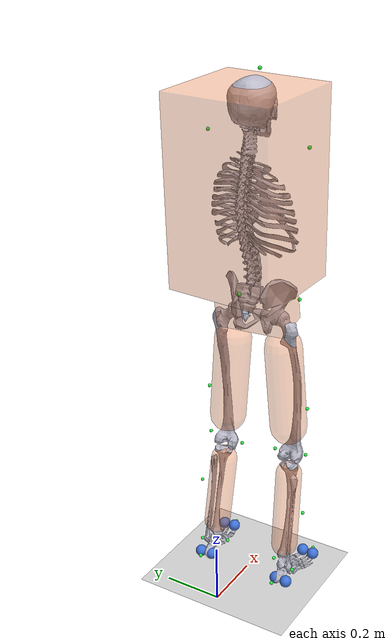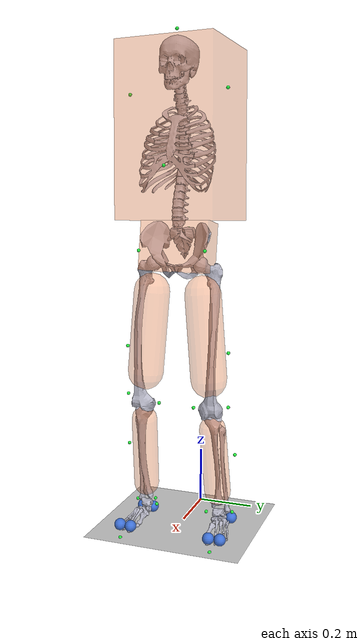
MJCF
<mujoco model="S001_calibrated">
  <compiler angle="radian" autolimits="true" />
  <option gravity="0 0 -9.80665" timestep="0.001" />
  <default>
    <default class="visual">
      <geom contype="0" conaffinity="0" group="2" rgba="0.72 0.72 0.78 1" />
    </default>
    <default class="collision">
      <geom friction="0.8 0.005 0.0001" solref="-100000 -1000" rgba="0.25 0.45 0.85 1" />
    </default>
    <default class="self_collision">
      <geom friction="0.8 0.005 0.0001" solref="-25000 -250" rgba="0.95 0.45 0.18 0.35" />
    </default>
  </default>
  <asset>
    <mesh name="visual_00_pelvis_sacrum_ec82986d" file="Geometry/visual_00_pelvis_sacrum_ec82986d.obj" />
    <mesh name="visual_01_pelvis_pelvis_302c8103" file="Geometry/visual_01_pelvis_pelvis_302c8103.obj" />
    <mesh name="visual_02_pelvis_l_pelvis_221ff377" file="Geometry/visual_02_pelvis_l_pelvis_221ff377.obj" />
    <mesh name="visual_03_femur_right_femur_r_2bf9d3ed" file="Geometry/visual_03_femur_right_femur_r_2bf9d3ed.obj" />
    <mesh name="visual_04_tibia_right_r_tibia_2958b9c9" file="Geometry/visual_04_tibia_right_r_tibia_2958b9c9.obj" />
    <mesh name="visual_05_tibia_right_fibula_640f87b7" file="Geometry/visual_05_tibia_right_fibula_640f87b7.obj" />
    <mesh name="visual_06_foot_right_talus_9a24dff8" file="Geometry/visual_06_foot_right_talus_9a24dff8.obj" />
    <mesh name="visual_07_foot_right_foot_7a876838" file="Geometry/visual_07_foot_right_foot_7a876838.obj" />
    <mesh name="visual_08_foot_right_bofoot_9f7184c1" file="Geometry/visual_08_foot_right_bofoot_9f7184c1.obj" />
    <mesh name="visual_09_femur_left_l_femur_3a5df196" file="Geometry/visual_09_femur_left_l_femur_3a5df196.obj" />
    <mesh name="visual_10_tibia_left_l_tibia_5528711a" file="Geometry/visual_10_tibia_left_l_tibia_5528711a.obj" />
    <mesh name="visual_11_tibia_left_l_fibula_21cdc2c3" file="Geometry/visual_11_tibia_left_l_fibula_21cdc2c3.obj" />
    <mesh name="visual_12_foot_left_l_talus_fd829c17" file="Geometry/visual_12_foot_left_l_talus_fd829c17.obj" />
    <mesh name="visual_13_foot_left_l_foot_3fe52ebe" file="Geometry/visual_13_foot_left_l_foot_3fe52ebe.obj" />
    <mesh name="visual_14_foot_left_l_bofoot_73bbc705" file="Geometry/visual_14_foot_left_l_bofoot_73bbc705.obj" />
    <mesh name="visual_15_torso_hat_spine_e5497b48" file="Geometry/visual_15_torso_hat_spine_e5497b48.obj" />
    <mesh name="visual_16_torso_hat_jaw_ccce7bf1" file="Geometry/visual_16_torso_hat_jaw_ccce7bf1.obj" />
    <mesh name="visual_17_torso_hat_skull_4c29f62d" file="Geometry/visual_17_torso_hat_skull_4c29f62d.obj" />
    <mesh name="visual_18_torso_hat_ribs_c455e842" file="Geometry/visual_18_torso_hat_ribs_c455e842.obj" />
  </asset>
  <worldbody>
    <geom class="collision" name="ground" type="plane" size="5 5 0.1" rgba="0.85 0.85 0.85 1" />
    <geom class="visual" name="visual_ground" type="plane" size="5 5 0.1" pos="0 0 -0.002" rgba="0.78 0.78 0.78 1" />
    <body name="pelvis" pos="0.343699383 0.0125606136 1.0052769" quat="0.986495801 -0.0128055559 0.160923111 0.02767318">
      <freejoint name="pelvis_free" />
      <inertial mass="12.8372117" pos="-0.0722635766 1.994932e-17 -0.0166107335" fullinertia="0.090098155 0.0524652246 0.0819766857 -1.38051736e-17 0.00584011942 1.21992179e-17" />
      <geom class="self_collision" name="collision_pelvis" type="box" pos="-0.0722635766 2.22621473e-17 -0.0166107335" quat="-0.366330887 0.604815411 0.604815411 -0.366330887" size="0.118220646 0.0882765688 0.0668441471" />
      <body name="torso" pos="-0.197093879 0.00247066871 4.11442885e-18" quat="0.980888698 0.0251863802 -0.186067148 -0.0510100472">
        <inertial mass="37.3187129" pos="0.0355025572 -0.0100664123 0.330289938" fullinertia="1.53365428 1.49076906 0.751756748 0 0 0" />
        <geom class="self_collision" name="collision_torso" type="box" pos="0.0355025572 -0.0100664123 0.330289938" quat="-4.37789511e-17 0.707106781 -1.09897805e-17 -0.707106781" size="0.302238765 0.178717899 0.168797523" />
        <site name="marker_Sternum" type="sphere" size="0.006" pos="0.23981105 0.0121477459 0.204221968" rgba="0.15 0.95 0.25 1" />
        <site name="marker_R.Acromium" type="sphere" size="0.006" pos="0.124045882 -0.167664419 0.458616209" rgba="0.15 0.95 0.25 1" />
        <site name="marker_L.Acromium" type="sphere" size="0.006" pos="0.124045882 0.190656196 0.459601783" rgba="0.15 0.95 0.25 1" />
        <site name="marker_Top.Head" type="sphere" size="0.006" pos="0.159197542 0.0239879485 0.655787567" rgba="0.15 0.95 0.25 1" />
        <geom class="visual" name="visual_15_torso_hat_spine_e5497b48" type="mesh" mesh="visual_15_torso_hat_spine_e5497b48" pos="0 0 0" />
        <geom class="visual" name="visual_16_torso_hat_jaw_ccce7bf1" type="mesh" mesh="visual_16_torso_hat_jaw_ccce7bf1" pos="0 0 0" />
        <geom class="visual" name="visual_17_torso_hat_skull_4c29f62d" type="mesh" mesh="visual_17_torso_hat_skull_4c29f62d" pos="0 0 0" />
        <geom class="visual" name="visual_18_torso_hat_ribs_c455e842" type="mesh" mesh="visual_18_torso_hat_ribs_c455e842" pos="0 0 0" />
      <joint name="torso_flexion" type="hinge" pos="0 0 0" axis="0 1 0" limited="true" range="-0.698131701 0.698131701" damping="0.5" armature="0.01" /><joint name="torso_lateral" type="hinge" pos="0 0 0" axis="1 0 0" limited="true" range="-0.523598776 0.523598776" damping="0.5" armature="0.01" /><joint name="torso_rotation" type="hinge" pos="0 0 0" axis="0 0 1" limited="true" range="-0.523598776 0.523598776" damping="0.5" armature="0.01" /></body>
      <body name="femur_left" pos="-0.0443475011 0.0840268443 -0.0700223702" quat="0.984725493 0.0492398603 -0.166681023 -0.0104200333">
        <inertial mass="10.1387485" pos="0 0 -0.212946957" fullinertia="0.224806073 0.235081356 0.049406616 0 0 0" />
        <joint name="hip_flexion_left" type="hinge" pos="0 0 0" axis="0 -1 0" limited="true" range="-0.523598776 2.0943951" damping="0.5" armature="0.01" />
        <joint name="hip_adduction_left" type="hinge" pos="0 0 0" axis="1 0 0" limited="true" range="-0.436332313 0.785398163" damping="0.5" armature="0.01" />
        <joint name="hip_rotation_left" type="hinge" pos="0 0 0" axis="0 0 -1" limited="true" range="-0.785398163 0.785398163" damping="0.3" armature="0.01" />
        <geom class="self_collision" name="collision_femur_left" type="capsule" size="0.063110668" fromto="0 0 -0.098110668 0 0 -0.397737468" />
        <body name="tibia_left" pos="-9.02685355e-19 3.10967098e-18 -0.495848136" quat="0.985048348 -0.00888040178 0.0865890532 0.148671536">
          <inertial mass="4.04126368" pos="0 0 -0.177020448" fullinertia="0.0493428936 0.0500142711 0.00489210211 0 0 0" />
          <joint name="knee_left" type="hinge" pos="0 0 0" axis="0 1 0" limited="true" range="-0.5 2.61799388" damping="0.3" armature="0.01" />
          <geom class="self_collision" name="collision_tibia_left" type="capsule" size="0.046558136" fromto="0 0 -0.081558136 0 0 -0.32614842" />
          <body name="foot_left" pos="-3.41569468e-18 -2.01292435e-18 -0.407706556" quat="0.989635607 -0.031150748 -0.0746482118 -0.118653445">
            <inertial mass="1.70763146" pos="0.046439363 0.00587096121 -0.020295508" fullinertia="0.00264064573 0.00716329796 0.00681252163 0.000249589237 0.000555215648 -5.06296655e-05" />
            <joint name="ankle_left" type="hinge" pos="0 0 0" axis="0 -1 0" limited="true" range="-0.872664626 0.523598776" damping="0.2" armature="0.005" />
            <geom class="collision" name="contact_left_0" type="sphere" size="0.0204739234" pos="-0.0395747246 -0.0051506885 -0.0344706619" />
            <geom class="visual" name="visual_foot_left_0" type="sphere" size="0.0204739234" pos="-0.0395747246 -0.0051506885 -0.0344706619" rgba="0.18 0.32 0.58 0.35" />
            <geom class="collision" name="contact_left_1" type="sphere" size="0.0204739234" pos="-0.0395747246 0.0357971583 -0.0344706619" />
            <geom class="visual" name="visual_foot_left_1" type="sphere" size="0.0204739234" pos="-0.0395747246 0.0357971583 -0.0344706619" rgba="0.18 0.32 0.58 0.35" />
            <geom class="collision" name="contact_left_2" type="sphere" size="0.0204739234" pos="0.149550193 -0.0051506885 -0.0344706619" />
            <geom class="visual" name="visual_foot_left_2" type="sphere" size="0.0204739234" pos="0.149550193 -0.0051506885 -0.0344706619" rgba="0.18 0.32 0.58 0.35" />
            <geom class="collision" name="contact_left_3" type="sphere" size="0.0204739234" pos="0.149550193 0.0357971583 -0.0344706619" />
            <geom class="visual" name="visual_foot_left_3" type="sphere" size="0.0204739234" pos="0.149550193 0.0357971583 -0.0344706619" rgba="0.18 0.32 0.58 0.35" />
            <site name="marker_L.Heel" type="sphere" size="0.006" pos="-0.0888622246 0.0128117283 -0.0161759535" rgba="0.15 0.95 0.25 1" />
            <site name="marker_L.Toe.Lat" type="sphere" size="0.006" pos="0.106791232 0.0923151935 -0.0735885628" rgba="0.15 0.95 0.25 1" />
            <site name="marker_L.Toe.Med" type="sphere" size="0.006" pos="0.14544382 -0.0179365623 -0.0646505904" rgba="0.15 0.95 0.25 1" />
            <site name="marker_L.Toe.Tip" type="sphere" size="0.006" pos="0.204827808 0.0128117283 -0.0558617234" rgba="0.15 0.95 0.25 1" />
            <geom class="visual" name="visual_12_foot_left_l_talus_fd829c17" type="mesh" mesh="visual_12_foot_left_l_talus_fd829c17" pos="0 0 0" />
            <geom class="visual" name="visual_13_foot_left_l_foot_3fe52ebe" type="mesh" mesh="visual_13_foot_left_l_foot_3fe52ebe" pos="0 0 0" />
            <geom class="visual" name="visual_14_foot_left_l_bofoot_73bbc705" type="mesh" mesh="visual_14_foot_left_l_bofoot_73bbc705" pos="0 0 0" />
          </body>
          <site name="marker_L.Shank.Centroid" type="sphere" size="0.006" pos="0.00643007566 0.0711503402 -0.183133826" rgba="0.15 0.95 0.25 1" />
          <site name="marker_L.Ankle.Lat" type="sphere" size="0.006" pos="-2.07906759e-17 0.0463433494 -0.412173546" rgba="0.15 0.95 0.25 1" />
          <site name="marker_L.Ankle.Med" type="sphere" size="0.006" pos="-2.15876549e-17 -0.0463433494 -0.403239566" rgba="0.15 0.95 0.25 1" />
          <geom class="visual" name="visual_10_tibia_left_l_tibia_5528711a" type="mesh" mesh="visual_10_tibia_left_l_tibia_5528711a" pos="0 0 0" />
          <geom class="visual" name="visual_11_tibia_left_l_fibula_21cdc2c3" type="mesh" mesh="visual_11_tibia_left_l_fibula_21cdc2c3" pos="0 0 0" />
        </body>
        <site name="marker_L.Thigh.Centroid" type="sphere" size="0.006" pos="-0.0106802219 0.0734399909 -0.307012115" rgba="0.15 0.95 0.25 1" />
        <site name="marker_L.Knee.Lat" type="sphere" size="0.006" pos="-3.37328108e-19 0.0630915246 -0.494293805" rgba="0.15 0.95 0.25 1" />
        <site name="marker_L.Knee.Med" type="sphere" size="0.006" pos="-8.80600288e-19 -0.0630915246 -0.497402466" rgba="0.15 0.95 0.25 1" />
        <geom class="visual" name="visual_09_femur_left_l_femur_3a5df196" type="mesh" mesh="visual_09_femur_left_l_femur_3a5df196" pos="0 0 0" />
      </body>
      <body name="femur_right" pos="-0.0443475011 -0.0840268443 -0.0700223702" quat="0.982577645 -0.0216039858 -0.163388742 -0.0858985374">
        <inertial mass="10.1387485" pos="0 0 -0.208760636" fullinertia="0.216815757 0.22709104 0.049406616 0 0 0" />
        <joint name="hip_flexion_right" type="hinge" pos="0 0 0" axis="0 -1 0" limited="true" range="-0.523598776 2.0943951" damping="0.5" armature="0.01" />
        <joint name="hip_adduction_right" type="hinge" pos="0 0 0" axis="-1 0 0" limited="true" range="-0.436332313 0.785398163" damping="0.5" armature="0.01" />
        <joint name="hip_rotation_right" type="hinge" pos="0 0 0" axis="0 0 1" limited="true" range="-0.785398163 0.785398163" damping="0.3" armature="0.01" />
        <geom class="self_collision" name="collision_femur_right" type="capsule" size="0.0629596304" fromto="0 0 -0.0979596304 0 0 -0.388140633" />
        <body name="tibia_right" pos="2.25330024e-19 -8.09517236e-20 -0.486100264" quat="0.991972618 0.00220753525 0.0913230117 -0.0874388916">
          <inertial mass="4.04126368" pos="0 0 -0.183256219" fullinertia="0.0527291561 0.0534005336 0.00489210211 0 0 0" />
          <joint name="knee_right" type="hinge" pos="0 0 0" axis="0 1 0" limited="true" range="-0.5 2.61799388" damping="0.3" armature="0.01" />
          <geom class="self_collision" name="collision_tibia_right" type="capsule" size="0.0451264789" fromto="0 0 -0.0801264789 0 0 -0.34194206" />
          <body name="foot_right" pos="1.14213488e-17 -7.53787454e-18 -0.422068539" quat="0.988876066 0.0374921398 -0.0816058887 0.118570417">
            <inertial mass="1.70763146" pos="0.046439692 -0.0058612445 -0.0202978797" fullinertia="0.00264075108 0.00716320678 0.00681251045 -0.000250342946 0.000555281756 5.07815352e-05" />
            <joint name="ankle_right" type="hinge" pos="0 0 0" axis="0 -1 0" limited="true" range="-0.872664626 0.523598776" damping="0.2" armature="0.005" />
            <geom class="collision" name="contact_right_0" type="sphere" size="0.0204692973" pos="-0.0395799837 -0.0357770438 -0.0343965572" />
            <geom class="visual" name="visual_foot_right_0" type="sphere" size="0.0204692973" pos="-0.0395799837 -0.0357770438 -0.0343965572" rgba="0.18 0.32 0.58 0.35" />
            <geom class="collision" name="contact_right_1" type="sphere" size="0.0204692973" pos="-0.0395799837 0.00516155073 -0.0343965572" />
            <geom class="visual" name="visual_foot_right_1" type="sphere" size="0.0204692973" pos="-0.0395799837 0.00516155073 -0.0343965572" rgba="0.18 0.32 0.58 0.35" />
            <geom class="collision" name="contact_right_2" type="sphere" size="0.0204692973" pos="0.149552882 -0.0357770438 -0.0343965572" />
            <geom class="visual" name="visual_foot_right_2" type="sphere" size="0.0204692973" pos="0.149552882 -0.0357770438 -0.0343965572" rgba="0.18 0.32 0.58 0.35" />
            <geom class="collision" name="contact_right_3" type="sphere" size="0.0204692973" pos="0.149552882 0.00516155073 -0.0343965572" />
            <geom class="visual" name="visual_foot_right_3" type="sphere" size="0.0204692973" pos="0.149552882 0.00516155073 -0.0343965572" rgba="0.18 0.32 0.58 0.35" />
            <site name="marker_R.Heel" type="sphere" size="0.006" pos="-0.0867979322 -0.00718984372 -0.0223530831" rgba="0.15 0.95 0.25 1" />
            <site name="marker_R.Toe.Lat" type="sphere" size="0.006" pos="0.105899742 -0.09505044 -0.0746842013" rgba="0.15 0.95 0.25 1" />
            <site name="marker_R.Toe.Med" type="sphere" size="0.006" pos="0.148534182 0.0145901355 -0.0627078825" rgba="0.15 0.95 0.25 1" />
            <site name="marker_R.Toe.Tip" type="sphere" size="0.006" pos="0.204399139 -0.00718984372 -0.0553617255" rgba="0.15 0.95 0.25 1" />
            <geom class="visual" name="visual_06_foot_right_talus_9a24dff8" type="mesh" mesh="visual_06_foot_right_talus_9a24dff8" pos="0 0 0" />
            <geom class="visual" name="visual_07_foot_right_foot_7a876838" type="mesh" mesh="visual_07_foot_right_foot_7a876838" pos="0 0 0" />
            <geom class="visual" name="visual_08_foot_right_bofoot_9f7184c1" type="mesh" mesh="visual_08_foot_right_bofoot_9f7184c1" pos="0 0 0" />
          </body>
          <site name="marker_R.Shank.Centroid" type="sphere" size="0.006" pos="0.00253032701 -0.0736462239 -0.199955898" rgba="0.15 0.95 0.25 1" />
          <site name="marker_R.Ankle.Lat" type="sphere" size="0.006" pos="2.23811477e-17 -0.0449364802 -0.426205186" rgba="0.15 0.95 0.25 1" />
          <site name="marker_R.Ankle.Med" type="sphere" size="0.006" pos="2.28050827e-17 0.0449364802 -0.417931892" rgba="0.15 0.95 0.25 1" />
          <geom class="visual" name="visual_04_tibia_right_r_tibia_2958b9c9" type="mesh" mesh="visual_04_tibia_right_r_tibia_2958b9c9" pos="0 0 0" />
          <geom class="visual" name="visual_05_tibia_right_fibula_640f87b7" type="mesh" mesh="visual_05_tibia_right_fibula_640f87b7" pos="0 0 0" />
        </body>
        <site name="marker_R.Thigh.Centroid" type="sphere" size="0.006" pos="0.00520058328 -0.0767581758 -0.307179256" rgba="0.15 0.95 0.25 1" />
        <site name="marker_R.Knee.Lat" type="sphere" size="0.006" pos="-2.8380528e-17 -0.0627716705 -0.481238943" rgba="0.15 0.95 0.25 1" />
        <site name="marker_R.Knee.Med" type="sphere" size="0.006" pos="-2.82331717e-17 0.0627716705 -0.490961585" rgba="0.15 0.95 0.25 1" />
        <geom class="visual" name="visual_03_femur_right_femur_r_2bf9d3ed" type="mesh" mesh="visual_03_femur_right_femur_r_2bf9d3ed" pos="0 0 0" />
      </body>
      <site name="marker_R.ASIS" type="sphere" size="0.006" pos="0.00495314698 -0.116615893 -0.00441016997" rgba="0.15 0.95 0.25 1" />
      <site name="marker_L.ASIS" type="sphere" size="0.006" pos="0.00704685302 0.116615893 0.00441016997" rgba="0.15 0.95 0.25 1" />
      <site name="marker_V.Sacral" type="sphere" size="0.006" pos="-0.197093879 0.00247066871 4.11442885e-18" rgba="0.15 0.95 0.25 1" />
      <geom class="visual" name="visual_00_pelvis_sacrum_ec82986d" type="mesh" mesh="visual_00_pelvis_sacrum_ec82986d" pos="0 0 0" />
      <geom class="visual" name="visual_01_pelvis_pelvis_302c8103" type="mesh" mesh="visual_01_pelvis_pelvis_302c8103" pos="0 0 0" />
      <geom class="visual" name="visual_02_pelvis_l_pelvis_221ff377" type="mesh" mesh="visual_02_pelvis_l_pelvis_221ff377" pos="0 0 0" />
    </body>
  </worldbody>
  <actuator>
    <position name="hip_flexion_left_position" joint="hip_flexion_left" kp="100" ctrllimited="true" ctrlrange="-0.523598776 2.0943951" />
    <velocity name="hip_flexion_left_velocity" joint="hip_flexion_left" kv="20" ctrllimited="true" ctrlrange="-20 20" />
    <position name="hip_adduction_left_position" joint="hip_adduction_left" kp="100" ctrllimited="true" ctrlrange="-0.436332313 0.785398163" />
    <velocity name="hip_adduction_left_velocity" joint="hip_adduction_left" kv="20" ctrllimited="true" ctrlrange="-20 20" />
    <position name="hip_rotation_left_position" joint="hip_rotation_left" kp="100" ctrllimited="true" ctrlrange="-0.785398163 0.785398163" />
    <velocity name="hip_rotation_left_velocity" joint="hip_rotation_left" kv="20" ctrllimited="true" ctrlrange="-20 20" />
    <position name="knee_left_position" joint="knee_left" kp="100" ctrllimited="true" ctrlrange="0 2.61799388" />
    <velocity name="knee_left_velocity" joint="knee_left" kv="20" ctrllimited="true" ctrlrange="-20 20" />
    <position name="ankle_left_position" joint="ankle_left" kp="100" ctrllimited="true" ctrlrange="-0.872664626 0.523598776" />
    <velocity name="ankle_left_velocity" joint="ankle_left" kv="20" ctrllimited="true" ctrlrange="-20 20" />
    <position name="hip_flexion_right_position" joint="hip_flexion_right" kp="100" ctrllimited="true" ctrlrange="-0.523598776 2.0943951" />
    <velocity name="hip_flexion_right_velocity" joint="hip_flexion_right" kv="20" ctrllimited="true" ctrlrange="-20 20" />
    <position name="hip_adduction_right_position" joint="hip_adduction_right" kp="100" ctrllimited="true" ctrlrange="-0.436332313 0.785398163" />
    <velocity name="hip_adduction_right_velocity" joint="hip_adduction_right" kv="20" ctrllimited="true" ctrlrange="-20 20" />
    <position name="hip_rotation_right_position" joint="hip_rotation_right" kp="100" ctrllimited="true" ctrlrange="-0.785398163 0.785398163" />
    <velocity name="hip_rotation_right_velocity" joint="hip_rotation_right" kv="20" ctrllimited="true" ctrlrange="-20 20" />
    <position name="knee_right_position" joint="knee_right" kp="100" ctrllimited="true" ctrlrange="0 2.61799388" />
    <velocity name="knee_right_velocity" joint="knee_right" kv="20" ctrllimited="true" ctrlrange="-20 20" />
    <position name="ankle_right_position" joint="ankle_right" kp="100" ctrllimited="true" ctrlrange="-0.872664626 0.523598776" />
    <velocity name="ankle_right_velocity" joint="ankle_right" kv="20" ctrllimited="true" ctrlrange="-20 20" />
  <position name="torso_flexion_position" joint="torso_flexion" kp="100" ctrllimited="true" ctrlrange="-0.698131701 0.698131701" /><position name="torso_lateral_position" joint="torso_lateral" kp="100" ctrllimited="true" ctrlrange="-0.523598776 0.523598776" /><position name="torso_rotation_position" joint="torso_rotation" kp="100" ctrllimited="true" ctrlrange="-0.523598776 0.523598776" /></actuator>
  <contact>
    <exclude body1="pelvis" body2="torso" />
    <exclude body1="pelvis" body2="femur_left" />
    <exclude body1="femur_left" body2="tibia_left" />
    <exclude body1="tibia_left" body2="foot_left" />
    <exclude body1="pelvis" body2="femur_right" />
    <exclude body1="femur_right" body2="tibia_right" />
    <exclude body1="tibia_right" body2="foot_right" />
  </contact>
  <keyframe>
    <key name="neutral" qpos="0.343699383 0.0125606136 1.0052769 0.986495801 -0.0128055559 0.160923111 0.02767318 0 0 0 0 0 0 0 0 0 0 0 0 0" />
  </keyframe>
</mujoco>
